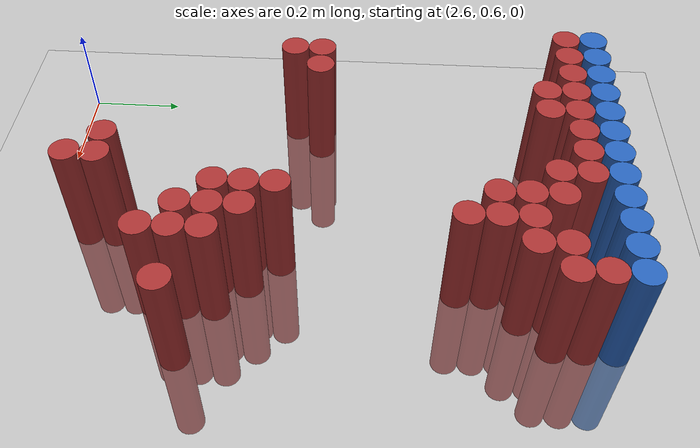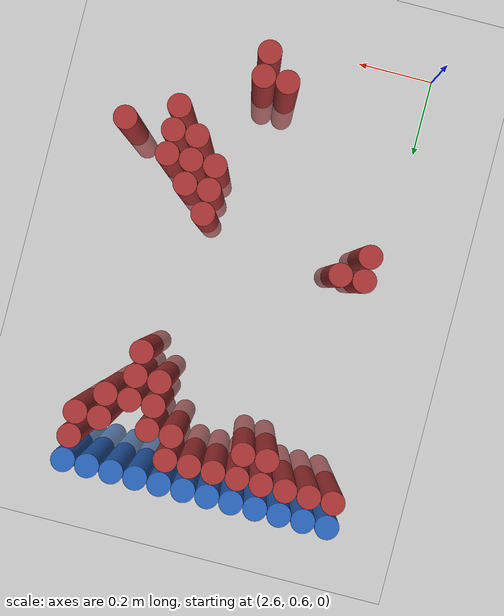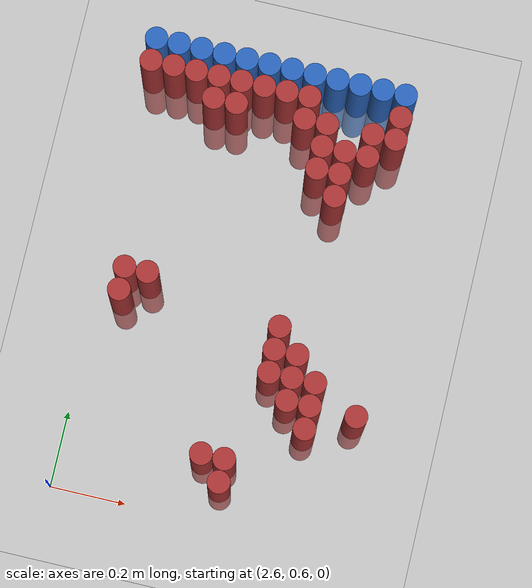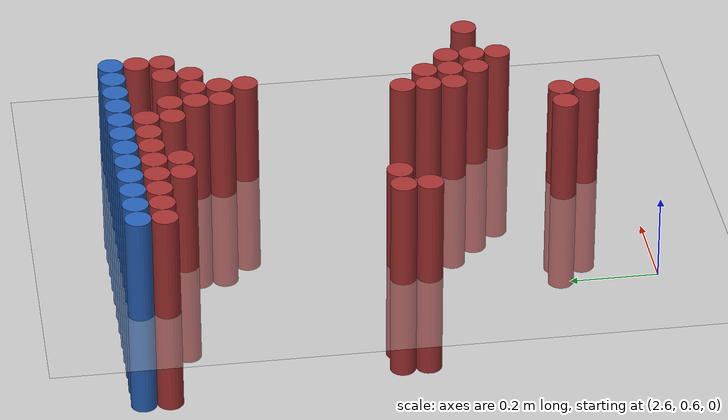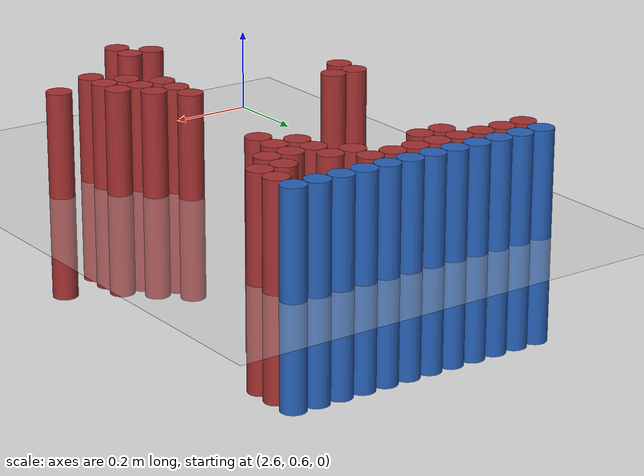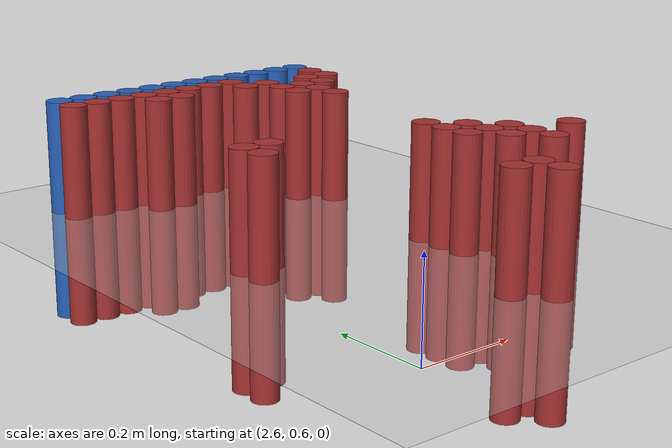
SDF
<sdf version="1.6">
 <world name="default">
  <model name="ground_plane">
   <static>1</static>
   <link name="link">
    <collision name="collision">
     <geometry><plane><normal>0 0 1</normal><size>100 100</size></plane></geometry>
     <surface><friction><ode><mu>100</mu><mu2>50</mu2></ode></friction></surface>
    </collision>
    <visual name="visual">
     <cast_shadows>0</cast_shadows>
     <geometry><plane><normal>0 0 1</normal><size>100 100</size></plane></geometry>
     <material>
      <script><uri>file://media/materials/scripts/gazebo.material</uri><name>Gazebo/Grey</name></script>
     </material>
    </visual>
   </link>
  </model>
  <model name="unit_cylinder_104">
   <static>1</static>
   <pose>2.610000 1.770000 0.000000 0.000000 0.000000 0.000000</pose>
   <link name="link">
    <inertial>
     <mass>1</mass>
     <inertia><ixx>0.145833</ixx><ixy>0</ixy><ixz>0</ixz><iyy>0.145833</iyy><iyz>0</iyz><izz>0.125</izz></inertia>
    </inertial>
    <collision name="collision">
     <geometry><cylinder><radius>0.030000</radius><length>0.5</length></cylinder></geometry>
    </collision>
    <visual name="visual">
     <geometry><cylinder><radius>0.030000</radius><length>0.5</length></cylinder></geometry>
     <material>
      <ambient>0.152000 0.379000 0.720000 1</ambient>
      <diffuse>0.152000 0.379000 0.720000 1</diffuse>
     </material>
     <material>
      <script><name>Gazebo/Grey</name><uri>file://media/materials/scripts/gazebo.material</uri></script>
     </material>
    </visual>
   </link>
  </model>
  <model name="unit_cylinder_105">
   <static>1</static>
   <pose>2.670000 1.770000 0.000000 0.000000 0.000000 0.000000</pose>
   <link name="link">
    <inertial>
     <mass>1</mass>
     <inertia><ixx>0.145833</ixx><ixy>0</ixy><ixz>0</ixz><iyy>0.145833</iyy><iyz>0</iyz><izz>0.125</izz></inertia>
    </inertial>
    <collision name="collision">
     <geometry><cylinder><radius>0.030000</radius><length>0.5</length></cylinder></geometry>
    </collision>
    <visual name="visual">
     <geometry><cylinder><radius>0.030000</radius><length>0.5</length></cylinder></geometry>
     <material>
      <ambient>0.152000 0.379000 0.720000 1</ambient>
      <diffuse>0.152000 0.379000 0.720000 1</diffuse>
     </material>
     <material>
      <script><name>Gazebo/Grey</name><uri>file://media/materials/scripts/gazebo.material</uri></script>
     </material>
    </visual>
   </link>
  </model>
  <model name="unit_cylinder_106">
   <static>1</static>
   <pose>2.730000 1.770000 0.000000 0.000000 0.000000 0.000000</pose>
   <link name="link">
    <inertial>
     <mass>1</mass>
     <inertia><ixx>0.145833</ixx><ixy>0</ixy><ixz>0</ixz><iyy>0.145833</iyy><iyz>0</iyz><izz>0.125</izz></inertia>
    </inertial>
    <collision name="collision">
     <geometry><cylinder><radius>0.030000</radius><length>0.5</length></cylinder></geometry>
    </collision>
    <visual name="visual">
     <geometry><cylinder><radius>0.030000</radius><length>0.5</length></cylinder></geometry>
     <material>
      <ambient>0.152000 0.379000 0.720000 1</ambient>
      <diffuse>0.152000 0.379000 0.720000 1</diffuse>
     </material>
     <material>
      <script><name>Gazebo/Grey</name><uri>file://media/materials/scripts/gazebo.material</uri></script>
     </material>
    </visual>
   </link>
  </model>
  <model name="unit_cylinder_107">
   <static>1</static>
   <pose>2.790000 1.770000 0.000000 0.000000 0.000000 0.000000</pose>
   <link name="link">
    <inertial>
     <mass>1</mass>
     <inertia><ixx>0.145833</ixx><ixy>0</ixy><ixz>0</ixz><iyy>0.145833</iyy><iyz>0</iyz><izz>0.125</izz></inertia>
    </inertial>
    <collision name="collision">
     <geometry><cylinder><radius>0.030000</radius><length>0.5</length></cylinder></geometry>
    </collision>
    <visual name="visual">
     <geometry><cylinder><radius>0.030000</radius><length>0.5</length></cylinder></geometry>
     <material>
      <ambient>0.152000 0.379000 0.720000 1</ambient>
      <diffuse>0.152000 0.379000 0.720000 1</diffuse>
     </material>
     <material>
      <script><name>Gazebo/Grey</name><uri>file://media/materials/scripts/gazebo.material</uri></script>
     </material>
    </visual>
   </link>
  </model>
  <model name="unit_cylinder_108">
   <static>1</static>
   <pose>2.850000 1.770000 0.000000 0.000000 0.000000 0.000000</pose>
   <link name="link">
    <inertial>
     <mass>1</mass>
     <inertia><ixx>0.145833</ixx><ixy>0</ixy><ixz>0</ixz><iyy>0.145833</iyy><iyz>0</iyz><izz>0.125</izz></inertia>
    </inertial>
    <collision name="collision">
     <geometry><cylinder><radius>0.030000</radius><length>0.5</length></cylinder></geometry>
    </collision>
    <visual name="visual">
     <geometry><cylinder><radius>0.030000</radius><length>0.5</length></cylinder></geometry>
     <material>
      <ambient>0.152000 0.379000 0.720000 1</ambient>
      <diffuse>0.152000 0.379000 0.720000 1</diffuse>
     </material>
     <material>
      <script><name>Gazebo/Grey</name><uri>file://media/materials/scripts/gazebo.material</uri></script>
     </material>
    </visual>
   </link>
  </model>
  <model name="unit_cylinder_109">
   <static>1</static>
   <pose>2.910000 1.770000 0.000000 0.000000 0.000000 0.000000</pose>
   <link name="link">
    <inertial>
     <mass>1</mass>
     <inertia><ixx>0.145833</ixx><ixy>0</ixy><ixz>0</ixz><iyy>0.145833</iyy><iyz>0</iyz><izz>0.125</izz></inertia>
    </inertial>
    <collision name="collision">
     <geometry><cylinder><radius>0.030000</radius><length>0.5</length></cylinder></geometry>
    </collision>
    <visual name="visual">
     <geometry><cylinder><radius>0.030000</radius><length>0.5</length></cylinder></geometry>
     <material>
      <ambient>0.152000 0.379000 0.720000 1</ambient>
      <diffuse>0.152000 0.379000 0.720000 1</diffuse>
     </material>
     <material>
      <script><name>Gazebo/Grey</name><uri>file://media/materials/scripts/gazebo.material</uri></script>
     </material>
    </visual>
   </link>
  </model>
  <model name="unit_cylinder_110">
   <static>1</static>
   <pose>2.970000 1.770000 0.000000 0.000000 0.000000 0.000000</pose>
   <link name="link">
    <inertial>
     <mass>1</mass>
     <inertia><ixx>0.145833</ixx><ixy>0</ixy><ixz>0</ixz><iyy>0.145833</iyy><iyz>0</iyz><izz>0.125</izz></inertia>
    </inertial>
    <collision name="collision">
     <geometry><cylinder><radius>0.030000</radius><length>0.5</length></cylinder></geometry>
    </collision>
    <visual name="visual">
     <geometry><cylinder><radius>0.030000</radius><length>0.5</length></cylinder></geometry>
     <material>
      <ambient>0.152000 0.379000 0.720000 1</ambient>
      <diffuse>0.152000 0.379000 0.720000 1</diffuse>
     </material>
     <material>
      <script><name>Gazebo/Grey</name><uri>file://media/materials/scripts/gazebo.material</uri></script>
     </material>
    </visual>
   </link>
  </model>
  <model name="unit_cylinder_111">
   <static>1</static>
   <pose>3.030000 1.770000 0.000000 0.000000 0.000000 0.000000</pose>
   <link name="link">
    <inertial>
     <mass>1</mass>
     <inertia><ixx>0.145833</ixx><ixy>0</ixy><ixz>0</ixz><iyy>0.145833</iyy><iyz>0</iyz><izz>0.125</izz></inertia>
    </inertial>
    <collision name="collision">
     <geometry><cylinder><radius>0.030000</radius><length>0.5</length></cylinder></geometry>
    </collision>
    <visual name="visual">
     <geometry><cylinder><radius>0.030000</radius><length>0.5</length></cylinder></geometry>
     <material>
      <ambient>0.152000 0.379000 0.720000 1</ambient>
      <diffuse>0.152000 0.379000 0.720000 1</diffuse>
     </material>
     <material>
      <script><name>Gazebo/Grey</name><uri>file://media/materials/scripts/gazebo.material</uri></script>
     </material>
    </visual>
   </link>
  </model>
  <model name="unit_cylinder_112">
   <static>1</static>
   <pose>3.090000 1.770000 0.000000 0.000000 0.000000 0.000000</pose>
   <link name="link">
    <inertial>
     <mass>1</mass>
     <inertia><ixx>0.145833</ixx><ixy>0</ixy><ixz>0</ixz><iyy>0.145833</iyy><iyz>0</iyz><izz>0.125</izz></inertia>
    </inertial>
    <collision name="collision">
     <geometry><cylinder><radius>0.030000</radius><length>0.5</length></cylinder></geometry>
    </collision>
    <visual name="visual">
     <geometry><cylinder><radius>0.030000</radius><length>0.5</length></cylinder></geometry>
     <material>
      <ambient>0.152000 0.379000 0.720000 1</ambient>
      <diffuse>0.152000 0.379000 0.720000 1</diffuse>
     </material>
     <material>
      <script><name>Gazebo/Grey</name><uri>file://media/materials/scripts/gazebo.material</uri></script>
     </material>
    </visual>
   </link>
  </model>
  <model name="unit_cylinder_113">
   <static>1</static>
   <pose>3.150000 1.770000 0.000000 0.000000 0.000000 0.000000</pose>
   <link name="link">
    <inertial>
     <mass>1</mass>
     <inertia><ixx>0.145833</ixx><ixy>0</ixy><ixz>0</ixz><iyy>0.145833</iyy><iyz>0</iyz><izz>0.125</izz></inertia>
    </inertial>
    <collision name="collision">
     <geometry><cylinder><radius>0.030000</radius><length>0.5</length></cylinder></geometry>
    </collision>
    <visual name="visual">
     <geometry><cylinder><radius>0.030000</radius><length>0.5</length></cylinder></geometry>
     <material>
      <ambient>0.152000 0.379000 0.720000 1</ambient>
      <diffuse>0.152000 0.379000 0.720000 1</diffuse>
     </material>
     <material>
      <script><name>Gazebo/Grey</name><uri>file://media/materials/scripts/gazebo.material</uri></script>
     </material>
    </visual>
   </link>
  </model>
  <model name="unit_cylinder_114">
   <static>1</static>
   <pose>3.210000 1.770000 0.000000 0.000000 0.000000 0.000000</pose>
   <link name="link">
    <inertial>
     <mass>1</mass>
     <inertia><ixx>0.145833</ixx><ixy>0</ixy><ixz>0</ixz><iyy>0.145833</iyy><iyz>0</iyz><izz>0.125</izz></inertia>
    </inertial>
    <collision name="collision">
     <geometry><cylinder><radius>0.030000</radius><length>0.5</length></cylinder></geometry>
    </collision>
    <visual name="visual">
     <geometry><cylinder><radius>0.030000</radius><length>0.5</length></cylinder></geometry>
     <material>
      <ambient>0.152000 0.379000 0.720000 1</ambient>
      <diffuse>0.152000 0.379000 0.720000 1</diffuse>
     </material>
     <material>
      <script><name>Gazebo/Grey</name><uri>file://media/materials/scripts/gazebo.material</uri></script>
     </material>
    </visual>
   </link>
  </model>
  <model name="unit_cylinder_115">
   <static>1</static>
   <pose>3.270000 1.770000 0.000000 0.000000 0.000000 0.000000</pose>
   <link name="link">
    <inertial>
     <mass>1</mass>
     <inertia><ixx>0.145833</ixx><ixy>0</ixy><ixz>0</ixz><iyy>0.145833</iyy><iyz>0</iyz><izz>0.125</izz></inertia>
    </inertial>
    <collision name="collision">
     <geometry><cylinder><radius>0.030000</radius><length>0.5</length></cylinder></geometry>
    </collision>
    <visual name="visual">
     <geometry><cylinder><radius>0.030000</radius><length>0.5</length></cylinder></geometry>
     <material>
      <ambient>0.152000 0.379000 0.720000 1</ambient>
      <diffuse>0.152000 0.379000 0.720000 1</diffuse>
     </material>
     <material>
      <script><name>Gazebo/Grey</name><uri>file://media/materials/scripts/gazebo.material</uri></script>
     </material>
    </visual>
   </link>
  </model>
  <model name="unit_cylinder_128">
   <static>1</static>
   <pose>2.610000 1.710000 0.000000 0.000000 0.000000 0.000000</pose>
   <link name="link">
    <inertial>
     <mass>1</mass>
     <inertia><ixx>0.145833</ixx><ixy>0</ixy><ixz>0</ixz><iyy>0.145833</iyy><iyz>0</iyz><izz>0.125</izz></inertia>
    </inertial>
    <collision name="collision">
     <geometry><cylinder><radius>0.030000</radius><length>0.5</length></cylinder></geometry>
    </collision>
    <visual name="visual">
     <geometry><cylinder><radius>0.030000</radius><length>0.5</length></cylinder></geometry>
     <material>
      <ambient>0.648000 0.192000 0.192000 1</ambient>
      <diffuse>0.648000 0.192000 0.192000 1</diffuse>
     </material>
     <material>
      <script><name>Gazebo/Grey</name><uri>file://media/materials/scripts/gazebo.material</uri></script>
     </material>
    </visual>
   </link>
  </model>
  <model name="unit_cylinder_129">
   <static>1</static>
   <pose>2.670000 1.710000 0.000000 0.000000 0.000000 0.000000</pose>
   <link name="link">
    <inertial>
     <mass>1</mass>
     <inertia><ixx>0.145833</ixx><ixy>0</ixy><ixz>0</ixz><iyy>0.145833</iyy><iyz>0</iyz><izz>0.125</izz></inertia>
    </inertial>
    <collision name="collision">
     <geometry><cylinder><radius>0.030000</radius><length>0.5</length></cylinder></geometry>
    </collision>
    <visual name="visual">
     <geometry><cylinder><radius>0.030000</radius><length>0.5</length></cylinder></geometry>
     <material>
      <ambient>0.648000 0.192000 0.192000 1</ambient>
      <diffuse>0.648000 0.192000 0.192000 1</diffuse>
     </material>
     <material>
      <script><name>Gazebo/Grey</name><uri>file://media/materials/scripts/gazebo.material</uri></script>
     </material>
    </visual>
   </link>
  </model>
  <model name="unit_cylinder_130">
   <static>1</static>
   <pose>2.730000 1.710000 0.000000 0.000000 0.000000 0.000000</pose>
   <link name="link">
    <inertial>
     <mass>1</mass>
     <inertia><ixx>0.145833</ixx><ixy>0</ixy><ixz>0</ixz><iyy>0.145833</iyy><iyz>0</iyz><izz>0.125</izz></inertia>
    </inertial>
    <collision name="collision">
     <geometry><cylinder><radius>0.030000</radius><length>0.5</length></cylinder></geometry>
    </collision>
    <visual name="visual">
     <geometry><cylinder><radius>0.030000</radius><length>0.5</length></cylinder></geometry>
     <material>
      <ambient>0.648000 0.192000 0.192000 1</ambient>
      <diffuse>0.648000 0.192000 0.192000 1</diffuse>
     </material>
     <material>
      <script><name>Gazebo/Grey</name><uri>file://media/materials/scripts/gazebo.material</uri></script>
     </material>
    </visual>
   </link>
  </model>
  <model name="unit_cylinder_131">
   <static>1</static>
   <pose>2.790000 1.710000 0.000000 0.000000 0.000000 0.000000</pose>
   <link name="link">
    <inertial>
     <mass>1</mass>
     <inertia><ixx>0.145833</ixx><ixy>0</ixy><ixz>0</ixz><iyy>0.145833</iyy><iyz>0</iyz><izz>0.125</izz></inertia>
    </inertial>
    <collision name="collision">
     <geometry><cylinder><radius>0.030000</radius><length>0.5</length></cylinder></geometry>
    </collision>
    <visual name="visual">
     <geometry><cylinder><radius>0.030000</radius><length>0.5</length></cylinder></geometry>
     <material>
      <ambient>0.648000 0.192000 0.192000 1</ambient>
      <diffuse>0.648000 0.192000 0.192000 1</diffuse>
     </material>
     <material>
      <script><name>Gazebo/Grey</name><uri>file://media/materials/scripts/gazebo.material</uri></script>
     </material>
    </visual>
   </link>
  </model>
  <model name="unit_cylinder_132">
   <static>1</static>
   <pose>2.850000 1.710000 0.000000 0.000000 0.000000 0.000000</pose>
   <link name="link">
    <inertial>
     <mass>1</mass>
     <inertia><ixx>0.145833</ixx><ixy>0</ixy><ixz>0</ixz><iyy>0.145833</iyy><iyz>0</iyz><izz>0.125</izz></inertia>
    </inertial>
    <collision name="collision">
     <geometry><cylinder><radius>0.030000</radius><length>0.5</length></cylinder></geometry>
    </collision>
    <visual name="visual">
     <geometry><cylinder><radius>0.030000</radius><length>0.5</length></cylinder></geometry>
     <material>
      <ambient>0.648000 0.192000 0.192000 1</ambient>
      <diffuse>0.648000 0.192000 0.192000 1</diffuse>
     </material>
     <material>
      <script><name>Gazebo/Grey</name><uri>file://media/materials/scripts/gazebo.material</uri></script>
     </material>
    </visual>
   </link>
  </model>
  <model name="unit_cylinder_133">
   <static>1</static>
   <pose>2.910000 1.710000 0.000000 0.000000 0.000000 0.000000</pose>
   <link name="link">
    <inertial>
     <mass>1</mass>
     <inertia><ixx>0.145833</ixx><ixy>0</ixy><ixz>0</ixz><iyy>0.145833</iyy><iyz>0</iyz><izz>0.125</izz></inertia>
    </inertial>
    <collision name="collision">
     <geometry><cylinder><radius>0.030000</radius><length>0.5</length></cylinder></geometry>
    </collision>
    <visual name="visual">
     <geometry><cylinder><radius>0.030000</radius><length>0.5</length></cylinder></geometry>
     <material>
      <ambient>0.648000 0.192000 0.192000 1</ambient>
      <diffuse>0.648000 0.192000 0.192000 1</diffuse>
     </material>
     <material>
      <script><name>Gazebo/Grey</name><uri>file://media/materials/scripts/gazebo.material</uri></script>
     </material>
    </visual>
   </link>
  </model>
  <model name="unit_cylinder_134">
   <static>1</static>
   <pose>2.970000 1.710000 0.000000 0.000000 0.000000 0.000000</pose>
   <link name="link">
    <inertial>
     <mass>1</mass>
     <inertia><ixx>0.145833</ixx><ixy>0</ixy><ixz>0</ixz><iyy>0.145833</iyy><iyz>0</iyz><izz>0.125</izz></inertia>
    </inertial>
    <collision name="collision">
     <geometry><cylinder><radius>0.030000</radius><length>0.5</length></cylinder></geometry>
    </collision>
    <visual name="visual">
     <geometry><cylinder><radius>0.030000</radius><length>0.5</length></cylinder></geometry>
     <material>
      <ambient>0.648000 0.192000 0.192000 1</ambient>
      <diffuse>0.648000 0.192000 0.192000 1</diffuse>
     </material>
     <material>
      <script><name>Gazebo/Grey</name><uri>file://media/materials/scripts/gazebo.material</uri></script>
     </material>
    </visual>
   </link>
  </model>
  <model name="unit_cylinder_135">
   <static>1</static>
   <pose>3.030000 1.710000 0.000000 0.000000 0.000000 0.000000</pose>
   <link name="link">
    <inertial>
     <mass>1</mass>
     <inertia><ixx>0.145833</ixx><ixy>0</ixy><ixz>0</ixz><iyy>0.145833</iyy><iyz>0</iyz><izz>0.125</izz></inertia>
    </inertial>
    <collision name="collision">
     <geometry><cylinder><radius>0.030000</radius><length>0.5</length></cylinder></geometry>
    </collision>
    <visual name="visual">
     <geometry><cylinder><radius>0.030000</radius><length>0.5</length></cylinder></geometry>
     <material>
      <ambient>0.648000 0.192000 0.192000 1</ambient>
      <diffuse>0.648000 0.192000 0.192000 1</diffuse>
     </material>
     <material>
      <script><name>Gazebo/Grey</name><uri>file://media/materials/scripts/gazebo.material</uri></script>
     </material>
    </visual>
   </link>
  </model>
  <model name="unit_cylinder_136">
   <static>1</static>
   <pose>3.270000 1.710000 0.000000 0.000000 0.000000 0.000000</pose>
   <link name="link">
    <inertial>
     <mass>1</mass>
     <inertia><ixx>0.145833</ixx><ixy>0</ixy><ixz>0</ixz><iyy>0.145833</iyy><iyz>0</iyz><izz>0.125</izz></inertia>
    </inertial>
    <collision name="collision">
     <geometry><cylinder><radius>0.030000</radius><length>0.5</length></cylinder></geometry>
    </collision>
    <visual name="visual">
     <geometry><cylinder><radius>0.030000</radius><length>0.5</length></cylinder></geometry>
     <material>
      <ambient>0.648000 0.192000 0.192000 1</ambient>
      <diffuse>0.648000 0.192000 0.192000 1</diffuse>
     </material>
     <material>
      <script><name>Gazebo/Grey</name><uri>file://media/materials/scripts/gazebo.material</uri></script>
     </material>
    </visual>
   </link>
  </model>
  <model name="unit_cylinder_144">
   <static>1</static>
   <pose>2.790000 1.650000 0.000000 0.000000 0.000000 0.000000</pose>
   <link name="link">
    <inertial>
     <mass>1</mass>
     <inertia><ixx>0.145833</ixx><ixy>0</ixy><ixz>0</ixz><iyy>0.145833</iyy><iyz>0</iyz><izz>0.125</izz></inertia>
    </inertial>
    <collision name="collision">
     <geometry><cylinder><radius>0.030000</radius><length>0.5</length></cylinder></geometry>
    </collision>
    <visual name="visual">
     <geometry><cylinder><radius>0.030000</radius><length>0.5</length></cylinder></geometry>
     <material>
      <ambient>0.648000 0.192000 0.192000 1</ambient>
      <diffuse>0.648000 0.192000 0.192000 1</diffuse>
     </material>
     <material>
      <script><name>Gazebo/Grey</name><uri>file://media/materials/scripts/gazebo.material</uri></script>
     </material>
    </visual>
   </link>
  </model>
  <model name="unit_cylinder_145">
   <static>1</static>
   <pose>2.850000 1.650000 0.000000 0.000000 0.000000 0.000000</pose>
   <link name="link">
    <inertial>
     <mass>1</mass>
     <inertia><ixx>0.145833</ixx><ixy>0</ixy><ixz>0</ixz><iyy>0.145833</iyy><iyz>0</iyz><izz>0.125</izz></inertia>
    </inertial>
    <collision name="collision">
     <geometry><cylinder><radius>0.030000</radius><length>0.5</length></cylinder></geometry>
    </collision>
    <visual name="visual">
     <geometry><cylinder><radius>0.030000</radius><length>0.5</length></cylinder></geometry>
     <material>
      <ambient>0.648000 0.192000 0.192000 1</ambient>
      <diffuse>0.648000 0.192000 0.192000 1</diffuse>
     </material>
     <material>
      <script><name>Gazebo/Grey</name><uri>file://media/materials/scripts/gazebo.material</uri></script>
     </material>
    </visual>
   </link>
  </model>
  <model name="unit_cylinder_146">
   <static>1</static>
   <pose>3.030000 1.650000 0.000000 0.000000 0.000000 0.000000</pose>
   <link name="link">
    <inertial>
     <mass>1</mass>
     <inertia><ixx>0.145833</ixx><ixy>0</ixy><ixz>0</ixz><iyy>0.145833</iyy><iyz>0</iyz><izz>0.125</izz></inertia>
    </inertial>
    <collision name="collision">
     <geometry><cylinder><radius>0.030000</radius><length>0.5</length></cylinder></geometry>
    </collision>
    <visual name="visual">
     <geometry><cylinder><radius>0.030000</radius><length>0.5</length></cylinder></geometry>
     <material>
      <ambient>0.648000 0.192000 0.192000 1</ambient>
      <diffuse>0.648000 0.192000 0.192000 1</diffuse>
     </material>
     <material>
      <script><name>Gazebo/Grey</name><uri>file://media/materials/scripts/gazebo.material</uri></script>
     </material>
    </visual>
   </link>
  </model>
  <model name="unit_cylinder_147">
   <static>1</static>
   <pose>3.090000 1.650000 0.000000 0.000000 0.000000 0.000000</pose>
   <link name="link">
    <inertial>
     <mass>1</mass>
     <inertia><ixx>0.145833</ixx><ixy>0</ixy><ixz>0</ixz><iyy>0.145833</iyy><iyz>0</iyz><izz>0.125</izz></inertia>
    </inertial>
    <collision name="collision">
     <geometry><cylinder><radius>0.030000</radius><length>0.5</length></cylinder></geometry>
    </collision>
    <visual name="visual">
     <geometry><cylinder><radius>0.030000</radius><length>0.5</length></cylinder></geometry>
     <material>
      <ambient>0.648000 0.192000 0.192000 1</ambient>
      <diffuse>0.648000 0.192000 0.192000 1</diffuse>
     </material>
     <material>
      <script><name>Gazebo/Grey</name><uri>file://media/materials/scripts/gazebo.material</uri></script>
     </material>
    </visual>
   </link>
  </model>
  <model name="unit_cylinder_148">
   <static>1</static>
   <pose>3.210000 1.650000 0.000000 0.000000 0.000000 0.000000</pose>
   <link name="link">
    <inertial>
     <mass>1</mass>
     <inertia><ixx>0.145833</ixx><ixy>0</ixy><ixz>0</ixz><iyy>0.145833</iyy><iyz>0</iyz><izz>0.125</izz></inertia>
    </inertial>
    <collision name="collision">
     <geometry><cylinder><radius>0.030000</radius><length>0.5</length></cylinder></geometry>
    </collision>
    <visual name="visual">
     <geometry><cylinder><radius>0.030000</radius><length>0.5</length></cylinder></geometry>
     <material>
      <ambient>0.648000 0.192000 0.192000 1</ambient>
      <diffuse>0.648000 0.192000 0.192000 1</diffuse>
     </material>
     <material>
      <script><name>Gazebo/Grey</name><uri>file://media/materials/scripts/gazebo.material</uri></script>
     </material>
    </visual>
   </link>
  </model>
  <model name="unit_cylinder_149">
   <static>1</static>
   <pose>3.270000 1.650000 0.000000 0.000000 0.000000 0.000000</pose>
   <link name="link">
    <inertial>
     <mass>1</mass>
     <inertia><ixx>0.145833</ixx><ixy>0</ixy><ixz>0</ixz><iyy>0.145833</iyy><iyz>0</iyz><izz>0.125</izz></inertia>
    </inertial>
    <collision name="collision">
     <geometry><cylinder><radius>0.030000</radius><length>0.5</length></cylinder></geometry>
    </collision>
    <visual name="visual">
     <geometry><cylinder><radius>0.030000</radius><length>0.5</length></cylinder></geometry>
     <material>
      <ambient>0.648000 0.192000 0.192000 1</ambient>
      <diffuse>0.648000 0.192000 0.192000 1</diffuse>
     </material>
     <material>
      <script><name>Gazebo/Grey</name><uri>file://media/materials/scripts/gazebo.material</uri></script>
     </material>
    </visual>
   </link>
  </model>
  <model name="unit_cylinder_151">
   <static>1</static>
   <pose>3.090000 1.590000 0.000000 0.000000 0.000000 0.000000</pose>
   <link name="link">
    <inertial>
     <mass>1</mass>
     <inertia><ixx>0.145833</ixx><ixy>0</ixy><ixz>0</ixz><iyy>0.145833</iyy><iyz>0</iyz><izz>0.125</izz></inertia>
    </inertial>
    <collision name="collision">
     <geometry><cylinder><radius>0.030000</radius><length>0.5</length></cylinder></geometry>
    </collision>
    <visual name="visual">
     <geometry><cylinder><radius>0.030000</radius><length>0.5</length></cylinder></geometry>
     <material>
      <ambient>0.648000 0.192000 0.192000 1</ambient>
      <diffuse>0.648000 0.192000 0.192000 1</diffuse>
     </material>
     <material>
      <script><name>Gazebo/Grey</name><uri>file://media/materials/scripts/gazebo.material</uri></script>
     </material>
    </visual>
   </link>
  </model>
  <model name="unit_cylinder_152">
   <static>1</static>
   <pose>3.150000 1.590000 0.000000 0.000000 0.000000 0.000000</pose>
   <link name="link">
    <inertial>
     <mass>1</mass>
     <inertia><ixx>0.145833</ixx><ixy>0</ixy><ixz>0</ixz><iyy>0.145833</iyy><iyz>0</iyz><izz>0.125</izz></inertia>
    </inertial>
    <collision name="collision">
     <geometry><cylinder><radius>0.030000</radius><length>0.5</length></cylinder></geometry>
    </collision>
    <visual name="visual">
     <geometry><cylinder><radius>0.030000</radius><length>0.5</length></cylinder></geometry>
     <material>
      <ambient>0.648000 0.192000 0.192000 1</ambient>
      <diffuse>0.648000 0.192000 0.192000 1</diffuse>
     </material>
     <material>
      <script><name>Gazebo/Grey</name><uri>file://media/materials/scripts/gazebo.material</uri></script>
     </material>
    </visual>
   </link>
  </model>
  <model name="unit_cylinder_153">
   <static>1</static>
   <pose>3.210000 1.590000 0.000000 0.000000 0.000000 0.000000</pose>
   <link name="link">
    <inertial>
     <mass>1</mass>
     <inertia><ixx>0.145833</ixx><ixy>0</ixy><ixz>0</ixz><iyy>0.145833</iyy><iyz>0</iyz><izz>0.125</izz></inertia>
    </inertial>
    <collision name="collision">
     <geometry><cylinder><radius>0.030000</radius><length>0.5</length></cylinder></geometry>
    </collision>
    <visual name="visual">
     <geometry><cylinder><radius>0.030000</radius><length>0.5</length></cylinder></geometry>
     <material>
      <ambient>0.648000 0.192000 0.192000 1</ambient>
      <diffuse>0.648000 0.192000 0.192000 1</diffuse>
     </material>
     <material>
      <script><name>Gazebo/Grey</name><uri>file://media/materials/scripts/gazebo.material</uri></script>
     </material>
    </visual>
   </link>
  </model>
  <model name="unit_cylinder_154">
   <static>1</static>
   <pose>3.090000 1.530000 0.000000 0.000000 0.000000 0.000000</pose>
   <link name="link">
    <inertial>
     <mass>1</mass>
     <inertia><ixx>0.145833</ixx><ixy>0</ixy><ixz>0</ixz><iyy>0.145833</iyy><iyz>0</iyz><izz>0.125</izz></inertia>
    </inertial>
    <collision name="collision">
     <geometry><cylinder><radius>0.030000</radius><length>0.5</length></cylinder></geometry>
    </collision>
    <visual name="visual">
     <geometry><cylinder><radius>0.030000</radius><length>0.5</length></cylinder></geometry>
     <material>
      <ambient>0.648000 0.192000 0.192000 1</ambient>
      <diffuse>0.648000 0.192000 0.192000 1</diffuse>
     </material>
     <material>
      <script><name>Gazebo/Grey</name><uri>file://media/materials/scripts/gazebo.material</uri></script>
     </material>
    </visual>
   </link>
  </model>
  <model name="unit_cylinder_155">
   <static>1</static>
   <pose>3.150000 1.530000 0.000000 0.000000 0.000000 0.000000</pose>
   <link name="link">
    <inertial>
     <mass>1</mass>
     <inertia><ixx>0.145833</ixx><ixy>0</ixy><ixz>0</ixz><iyy>0.145833</iyy><iyz>0</iyz><izz>0.125</izz></inertia>
    </inertial>
    <collision name="collision">
     <geometry><cylinder><radius>0.030000</radius><length>0.5</length></cylinder></geometry>
    </collision>
    <visual name="visual">
     <geometry><cylinder><radius>0.030000</radius><length>0.5</length></cylinder></geometry>
     <material>
      <ambient>0.648000 0.192000 0.192000 1</ambient>
      <diffuse>0.648000 0.192000 0.192000 1</diffuse>
     </material>
     <material>
      <script><name>Gazebo/Grey</name><uri>file://media/materials/scripts/gazebo.material</uri></script>
     </material>
    </visual>
   </link>
  </model>
  <model name="unit_cylinder_158">
   <static>1</static>
   <pose>3.150000 1.470000 0.000000 0.000000 0.000000 0.000000</pose>
   <link name="link">
    <inertial>
     <mass>1</mass>
     <inertia><ixx>0.145833</ixx><ixy>0</ixy><ixz>0</ixz><iyy>0.145833</iyy><iyz>0</iyz><izz>0.125</izz></inertia>
    </inertial>
    <collision name="collision">
     <geometry><cylinder><radius>0.030000</radius><length>0.5</length></cylinder></geometry>
    </collision>
    <visual name="visual">
     <geometry><cylinder><radius>0.030000</radius><length>0.5</length></cylinder></geometry>
     <material>
      <ambient>0.648000 0.192000 0.192000 1</ambient>
      <diffuse>0.648000 0.192000 0.192000 1</diffuse>
     </material>
     <material>
      <script><name>Gazebo/Grey</name><uri>file://media/materials/scripts/gazebo.material</uri></script>
     </material>
    </visual>
   </link>
  </model>
  <model name="unit_cylinder_173">
   <static>1</static>
   <pose>2.670000 1.170000 0.000000 0.000000 0.000000 0.000000</pose>
   <link name="link">
    <inertial>
     <mass>1</mass>
     <inertia><ixx>0.145833</ixx><ixy>0</ixy><ixz>0</ixz><iyy>0.145833</iyy><iyz>0</iyz><izz>0.125</izz></inertia>
    </inertial>
    <collision name="collision">
     <geometry><cylinder><radius>0.030000</radius><length>0.5</length></cylinder></geometry>
    </collision>
    <visual name="visual">
     <geometry><cylinder><radius>0.030000</radius><length>0.5</length></cylinder></geometry>
     <material>
      <ambient>0.648000 0.192000 0.192000 1</ambient>
      <diffuse>0.648000 0.192000 0.192000 1</diffuse>
     </material>
     <material>
      <script><name>Gazebo/Grey</name><uri>file://media/materials/scripts/gazebo.material</uri></script>
     </material>
    </visual>
   </link>
  </model>
  <model name="unit_cylinder_174">
   <static>1</static>
   <pose>2.730000 1.170000 0.000000 0.000000 0.000000 0.000000</pose>
   <link name="link">
    <inertial>
     <mass>1</mass>
     <inertia><ixx>0.145833</ixx><ixy>0</ixy><ixz>0</ixz><iyy>0.145833</iyy><iyz>0</iyz><izz>0.125</izz></inertia>
    </inertial>
    <collision name="collision">
     <geometry><cylinder><radius>0.030000</radius><length>0.5</length></cylinder></geometry>
    </collision>
    <visual name="visual">
     <geometry><cylinder><radius>0.030000</radius><length>0.5</length></cylinder></geometry>
     <material>
      <ambient>0.648000 0.192000 0.192000 1</ambient>
      <diffuse>0.648000 0.192000 0.192000 1</diffuse>
     </material>
     <material>
      <script><name>Gazebo/Grey</name><uri>file://media/materials/scripts/gazebo.material</uri></script>
     </material>
    </visual>
   </link>
  </model>
  <model name="unit_cylinder_178">
   <static>1</static>
   <pose>2.670000 1.110000 0.000000 0.000000 0.000000 0.000000</pose>
   <link name="link">
    <inertial>
     <mass>1</mass>
     <inertia><ixx>0.145833</ixx><ixy>0</ixy><ixz>0</ixz><iyy>0.145833</iyy><iyz>0</iyz><izz>0.125</izz></inertia>
    </inertial>
    <collision name="collision">
     <geometry><cylinder><radius>0.030000</radius><length>0.5</length></cylinder></geometry>
    </collision>
    <visual name="visual">
     <geometry><cylinder><radius>0.030000</radius><length>0.5</length></cylinder></geometry>
     <material>
      <ambient>0.648000 0.192000 0.192000 1</ambient>
      <diffuse>0.648000 0.192000 0.192000 1</diffuse>
     </material>
     <material>
      <script><name>Gazebo/Grey</name><uri>file://media/materials/scripts/gazebo.material</uri></script>
     </material>
    </visual>
   </link>
  </model>
  <model name="unit_cylinder_179">
   <static>1</static>
   <pose>3.090000 1.110000 0.000000 0.000000 0.000000 0.000000</pose>
   <link name="link">
    <inertial>
     <mass>1</mass>
     <inertia><ixx>0.145833</ixx><ixy>0</ixy><ixz>0</ixz><iyy>0.145833</iyy><iyz>0</iyz><izz>0.125</izz></inertia>
    </inertial>
    <collision name="collision">
     <geometry><cylinder><radius>0.030000</radius><length>0.5</length></cylinder></geometry>
    </collision>
    <visual name="visual">
     <geometry><cylinder><radius>0.030000</radius><length>0.5</length></cylinder></geometry>
     <material>
      <ambient>0.648000 0.192000 0.192000 1</ambient>
      <diffuse>0.648000 0.192000 0.192000 1</diffuse>
     </material>
     <material>
      <script><name>Gazebo/Grey</name><uri>file://media/materials/scripts/gazebo.material</uri></script>
     </material>
    </visual>
   </link>
  </model>
  <model name="unit_cylinder_184">
   <static>1</static>
   <pose>3.090000 1.050000 0.000000 0.000000 0.000000 0.000000</pose>
   <link name="link">
    <inertial>
     <mass>1</mass>
     <inertia><ixx>0.145833</ixx><ixy>0</ixy><ixz>0</ixz><iyy>0.145833</iyy><iyz>0</iyz><izz>0.125</izz></inertia>
    </inertial>
    <collision name="collision">
     <geometry><cylinder><radius>0.030000</radius><length>0.5</length></cylinder></geometry>
    </collision>
    <visual name="visual">
     <geometry><cylinder><radius>0.030000</radius><length>0.5</length></cylinder></geometry>
     <material>
      <ambient>0.648000 0.192000 0.192000 1</ambient>
      <diffuse>0.648000 0.192000 0.192000 1</diffuse>
     </material>
     <material>
      <script><name>Gazebo/Grey</name><uri>file://media/materials/scripts/gazebo.material</uri></script>
     </material>
    </visual>
   </link>
  </model>
  <model name="unit_cylinder_185">
   <static>1</static>
   <pose>3.150000 1.050000 0.000000 0.000000 0.000000 0.000000</pose>
   <link name="link">
    <inertial>
     <mass>1</mass>
     <inertia><ixx>0.145833</ixx><ixy>0</ixy><ixz>0</ixz><iyy>0.145833</iyy><iyz>0</iyz><izz>0.125</izz></inertia>
    </inertial>
    <collision name="collision">
     <geometry><cylinder><radius>0.030000</radius><length>0.5</length></cylinder></geometry>
    </collision>
    <visual name="visual">
     <geometry><cylinder><radius>0.030000</radius><length>0.5</length></cylinder></geometry>
     <material>
      <ambient>0.648000 0.192000 0.192000 1</ambient>
      <diffuse>0.648000 0.192000 0.192000 1</diffuse>
     </material>
     <material>
      <script><name>Gazebo/Grey</name><uri>file://media/materials/scripts/gazebo.material</uri></script>
     </material>
    </visual>
   </link>
  </model>
  <model name="unit_cylinder_190">
   <static>1</static>
   <pose>3.090000 0.990000 0.000000 0.000000 0.000000 0.000000</pose>
   <link name="link">
    <inertial>
     <mass>1</mass>
     <inertia><ixx>0.145833</ixx><ixy>0</ixy><ixz>0</ixz><iyy>0.145833</iyy><iyz>0</iyz><izz>0.125</izz></inertia>
    </inertial>
    <collision name="collision">
     <geometry><cylinder><radius>0.030000</radius><length>0.5</length></cylinder></geometry>
    </collision>
    <visual name="visual">
     <geometry><cylinder><radius>0.030000</radius><length>0.5</length></cylinder></geometry>
     <material>
      <ambient>0.648000 0.192000 0.192000 1</ambient>
      <diffuse>0.648000 0.192000 0.192000 1</diffuse>
     </material>
     <material>
      <script><name>Gazebo/Grey</name><uri>file://media/materials/scripts/gazebo.material</uri></script>
     </material>
    </visual>
   </link>
  </model>
  <model name="unit_cylinder_191">
   <static>1</static>
   <pose>3.150000 0.990000 0.000000 0.000000 0.000000 0.000000</pose>
   <link name="link">
    <inertial>
     <mass>1</mass>
     <inertia><ixx>0.145833</ixx><ixy>0</ixy><ixz>0</ixz><iyy>0.145833</iyy><iyz>0</iyz><izz>0.125</izz></inertia>
    </inertial>
    <collision name="collision">
     <geometry><cylinder><radius>0.030000</radius><length>0.5</length></cylinder></geometry>
    </collision>
    <visual name="visual">
     <geometry><cylinder><radius>0.030000</radius><length>0.5</length></cylinder></geometry>
     <material>
      <ambient>0.648000 0.192000 0.192000 1</ambient>
      <diffuse>0.648000 0.192000 0.192000 1</diffuse>
     </material>
     <material>
      <script><name>Gazebo/Grey</name><uri>file://media/materials/scripts/gazebo.material</uri></script>
     </material>
    </visual>
   </link>
  </model>
  <model name="unit_cylinder_192">
   <static>1</static>
   <pose>3.210000 0.990000 0.000000 0.000000 0.000000 0.000000</pose>
   <link name="link">
    <inertial>
     <mass>1</mass>
     <inertia><ixx>0.145833</ixx><ixy>0</ixy><ixz>0</ixz><iyy>0.145833</iyy><iyz>0</iyz><izz>0.125</izz></inertia>
    </inertial>
    <collision name="collision">
     <geometry><cylinder><radius>0.030000</radius><length>0.5</length></cylinder></geometry>
    </collision>
    <visual name="visual">
     <geometry><cylinder><radius>0.030000</radius><length>0.5</length></cylinder></geometry>
     <material>
      <ambient>0.648000 0.192000 0.192000 1</ambient>
      <diffuse>0.648000 0.192000 0.192000 1</diffuse>
     </material>
     <material>
      <script><name>Gazebo/Grey</name><uri>file://media/materials/scripts/gazebo.material</uri></script>
     </material>
    </visual>
   </link>
  </model>
  <model name="unit_cylinder_198">
   <static>1</static>
   <pose>3.150000 0.930000 0.000000 0.000000 0.000000 0.000000</pose>
   <link name="link">
    <inertial>
     <mass>1</mass>
     <inertia><ixx>0.145833</ixx><ixy>0</ixy><ixz>0</ixz><iyy>0.145833</iyy><iyz>0</iyz><izz>0.125</izz></inertia>
    </inertial>
    <collision name="collision">
     <geometry><cylinder><radius>0.030000</radius><length>0.5</length></cylinder></geometry>
    </collision>
    <visual name="visual">
     <geometry><cylinder><radius>0.030000</radius><length>0.5</length></cylinder></geometry>
     <material>
      <ambient>0.648000 0.192000 0.192000 1</ambient>
      <diffuse>0.648000 0.192000 0.192000 1</diffuse>
     </material>
     <material>
      <script><name>Gazebo/Grey</name><uri>file://media/materials/scripts/gazebo.material</uri></script>
     </material>
    </visual>
   </link>
  </model>
  <model name="unit_cylinder_199">
   <static>1</static>
   <pose>3.210000 0.930000 0.000000 0.000000 0.000000 0.000000</pose>
   <link name="link">
    <inertial>
     <mass>1</mass>
     <inertia><ixx>0.145833</ixx><ixy>0</ixy><ixz>0</ixz><iyy>0.145833</iyy><iyz>0</iyz><izz>0.125</izz></inertia>
    </inertial>
    <collision name="collision">
     <geometry><cylinder><radius>0.030000</radius><length>0.5</length></cylinder></geometry>
    </collision>
    <visual name="visual">
     <geometry><cylinder><radius>0.030000</radius><length>0.5</length></cylinder></geometry>
     <material>
      <ambient>0.648000 0.192000 0.192000 1</ambient>
      <diffuse>0.648000 0.192000 0.192000 1</diffuse>
     </material>
     <material>
      <script><name>Gazebo/Grey</name><uri>file://media/materials/scripts/gazebo.material</uri></script>
     </material>
    </visual>
   </link>
  </model>
  <model name="unit_cylinder_200">
   <static>1</static>
   <pose>3.330000 0.930000 0.000000 0.000000 0.000000 0.000000</pose>
   <link name="link">
    <inertial>
     <mass>1</mass>
     <inertia><ixx>0.145833</ixx><ixy>0</ixy><ixz>0</ixz><iyy>0.145833</iyy><iyz>0</iyz><izz>0.125</izz></inertia>
    </inertial>
    <collision name="collision">
     <geometry><cylinder><radius>0.030000</radius><length>0.5</length></cylinder></geometry>
    </collision>
    <visual name="visual">
     <geometry><cylinder><radius>0.030000</radius><length>0.5</length></cylinder></geometry>
     <material>
      <ambient>0.648000 0.192000 0.192000 1</ambient>
      <diffuse>0.648000 0.192000 0.192000 1</diffuse>
     </material>
     <material>
      <script><name>Gazebo/Grey</name><uri>file://media/materials/scripts/gazebo.material</uri></script>
     </material>
    </visual>
   </link>
  </model>
  <model name="unit_cylinder_206">
   <static>1</static>
   <pose>3.210000 0.870000 0.000000 0.000000 0.000000 0.000000</pose>
   <link name="link">
    <inertial>
     <mass>1</mass>
     <inertia><ixx>0.145833</ixx><ixy>0</ixy><ixz>0</ixz><iyy>0.145833</iyy><iyz>0</iyz><izz>0.125</izz></inertia>
    </inertial>
    <collision name="collision">
     <geometry><cylinder><radius>0.030000</radius><length>0.5</length></cylinder></geometry>
    </collision>
    <visual name="visual">
     <geometry><cylinder><radius>0.030000</radius><length>0.5</length></cylinder></geometry>
     <material>
      <ambient>0.648000 0.192000 0.192000 1</ambient>
      <diffuse>0.648000 0.192000 0.192000 1</diffuse>
     </material>
     <material>
      <script><name>Gazebo/Grey</name><uri>file://media/materials/scripts/gazebo.material</uri></script>
     </material>
    </visual>
   </link>
  </model>
  <model name="unit_cylinder_216">
   <static>1</static>
   <pose>2.970000 0.750000 0.000000 0.000000 0.000000 0.000000</pose>
   <link name="link">
    <inertial>
     <mass>1</mass>
     <inertia><ixx>0.145833</ixx><ixy>0</ixy><ixz>0</ixz><iyy>0.145833</iyy><iyz>0</iyz><izz>0.125</izz></inertia>
    </inertial>
    <collision name="collision">
     <geometry><cylinder><radius>0.030000</radius><length>0.5</length></cylinder></geometry>
    </collision>
    <visual name="visual">
     <geometry><cylinder><radius>0.030000</radius><length>0.5</length></cylinder></geometry>
     <material>
      <ambient>0.648000 0.192000 0.192000 1</ambient>
      <diffuse>0.648000 0.192000 0.192000 1</diffuse>
     </material>
     <material>
      <script><name>Gazebo/Grey</name><uri>file://media/materials/scripts/gazebo.material</uri></script>
     </material>
    </visual>
   </link>
  </model>
  <model name="unit_cylinder_217">
   <static>1</static>
   <pose>3.030000 0.750000 0.000000 0.000000 0.000000 0.000000</pose>
   <link name="link">
    <inertial>
     <mass>1</mass>
     <inertia><ixx>0.145833</ixx><ixy>0</ixy><ixz>0</ixz><iyy>0.145833</iyy><iyz>0</iyz><izz>0.125</izz></inertia>
    </inertial>
    <collision name="collision">
     <geometry><cylinder><radius>0.030000</radius><length>0.5</length></cylinder></geometry>
    </collision>
    <visual name="visual">
     <geometry><cylinder><radius>0.030000</radius><length>0.5</length></cylinder></geometry>
     <material>
      <ambient>0.648000 0.192000 0.192000 1</ambient>
      <diffuse>0.648000 0.192000 0.192000 1</diffuse>
     </material>
     <material>
      <script><name>Gazebo/Grey</name><uri>file://media/materials/scripts/gazebo.material</uri></script>
     </material>
    </visual>
   </link>
  </model>
  <model name="unit_cylinder_221">
   <static>1</static>
   <pose>3.030000 0.690000 0.000000 0.000000 0.000000 0.000000</pose>
   <link name="link">
    <inertial>
     <mass>1</mass>
     <inertia><ixx>0.145833</ixx><ixy>0</ixy><ixz>0</ixz><iyy>0.145833</iyy><iyz>0</iyz><izz>0.125</izz></inertia>
    </inertial>
    <collision name="collision">
     <geometry><cylinder><radius>0.030000</radius><length>0.5</length></cylinder></geometry>
    </collision>
    <visual name="visual">
     <geometry><cylinder><radius>0.030000</radius><length>0.5</length></cylinder></geometry>
     <material>
      <ambient>0.648000 0.192000 0.192000 1</ambient>
      <diffuse>0.648000 0.192000 0.192000 1</diffuse>
     </material>
     <material>
      <script><name>Gazebo/Grey</name><uri>file://media/materials/scripts/gazebo.material</uri></script>
     </material>
    </visual>
   </link>
  </model>
 </world>
</sdf>
